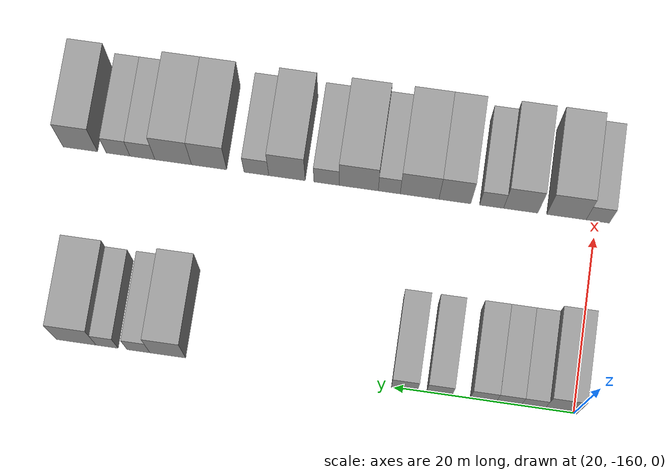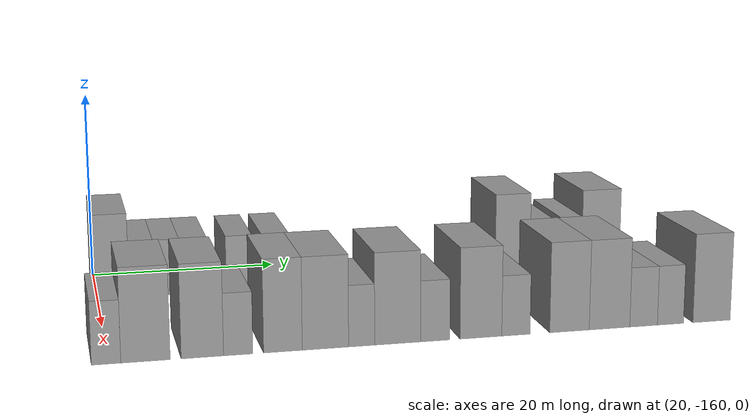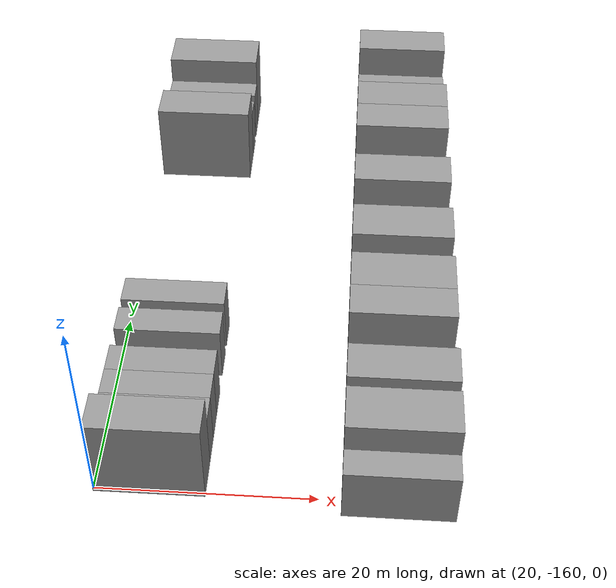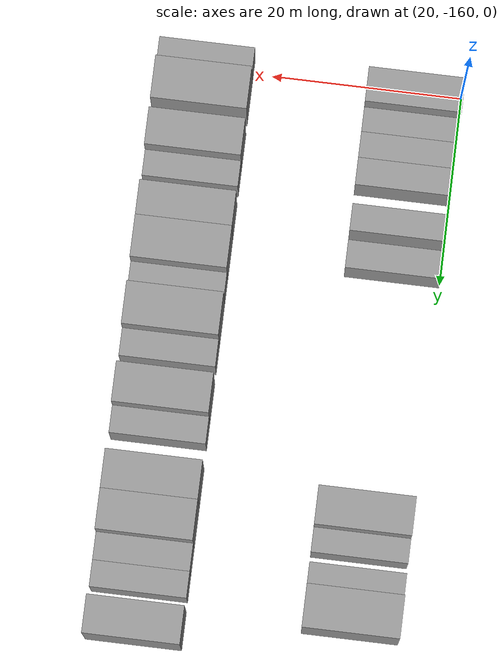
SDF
<sdf version="1.6">
 <world name="default">
  <model name="building_14">
   <static>1</static>
   <pose>25.0000 -158.5109 0 0.000000 0.000000 0.000000</pose>
   <link name="link">
    <pose>0 0 4.50 0 0 0</pose>
    <collision name="collision"><geometry><box><size>10.0000 3.6571 9.0000</size></box></geometry></collision>
    <visual name="visual">
     <cast_shadows>0</cast_shadows>
     <geometry><box><size>10.0000 3.6571 9.0000</size></box></geometry>
     <material>
      <script>
       <uri>model://grey_wall/materials/scripts</uri>
       <uri>model://grey_wall/materials/textures</uri>
       <name>vrc/grey_wall</name>
      </script>
     </material>
    </visual>
   </link>
  </model>
  <model name="building_15">
   <static>1</static>
   <pose>25.0000 -155.3823 0 0.000000 0.000000 0.000000</pose>
   <link name="link">
    <pose>0 0 3.00 0 0 0</pose>
    <collision name="collision"><geometry><box><size>10.0000 2.6001 6.0000</size></box></geometry></collision>
    <visual name="visual">
     <cast_shadows>0</cast_shadows>
     <geometry><box><size>10.0000 2.6001 6.0000</size></box></geometry>
     <material>
      <script>
       <uri>model://grey_wall/materials/scripts</uri>
       <uri>model://grey_wall/materials/textures</uri>
       <name>vrc/grey_wall</name>
      </script>
     </material>
    </visual>
   </link>
  </model>
  <model name="building_16">
   <static>1</static>
   <pose>25.0000 -152.7136 0 0.000000 0.000000 0.000000</pose>
   <link name="link">
    <pose>0 0 3.00 0 0 0</pose>
    <collision name="collision"><geometry><box><size>10.0000 2.7374 6.0000</size></box></geometry></collision>
    <visual name="visual">
     <cast_shadows>0</cast_shadows>
     <geometry><box><size>10.0000 2.7374 6.0000</size></box></geometry>
     <material>
      <script>
       <uri>model://grey_wall/materials/scripts</uri>
       <uri>model://grey_wall/materials/textures</uri>
       <name>vrc/grey_wall</name>
      </script>
     </material>
    </visual>
   </link>
  </model>
  <model name="building_17">
   <static>1</static>
   <pose>25.0000 -149.9025 0 0.000000 0.000000 0.000000</pose>
   <link name="link">
    <pose>0 0 3.00 0 0 0</pose>
    <collision name="collision"><geometry><box><size>10.0000 2.8847 6.0000</size></box></geometry></collision>
    <visual name="visual">
     <cast_shadows>0</cast_shadows>
     <geometry><box><size>10.0000 2.8847 6.0000</size></box></geometry>
     <material>
      <script>
       <uri>model://grey_wall/materials/scripts</uri>
       <uri>model://grey_wall/materials/textures</uri>
       <name>vrc/grey_wall</name>
      </script>
     </material>
    </visual>
   </link>
  </model>
  <model name="building_18">
   <static>1</static>
   <pose>25.0000 -145.0434 0 0.000000 0.000000 0.000000</pose>
   <link name="link">
    <pose>0 0 3.00 0 0 0</pose>
    <collision name="collision"><geometry><box><size>10.0000 2.8335 6.0000</size></box></geometry></collision>
    <visual name="visual">
     <cast_shadows>0</cast_shadows>
     <geometry><box><size>10.0000 2.8335 6.0000</size></box></geometry>
     <material>
      <script>
       <uri>model://grey_wall/materials/scripts</uri>
       <uri>model://grey_wall/materials/textures</uri>
       <name>vrc/grey_wall</name>
      </script>
     </material>
    </visual>
   </link>
  </model>
  <model name="building_19">
   <static>1</static>
   <pose>25.0000 -141.1644 0 0.000000 0.000000 0.000000</pose>
   <link name="link">
    <pose>0 0 3.00 0 0 0</pose>
    <collision name="collision"><geometry><box><size>10.0000 2.9245 6.0000</size></box></geometry></collision>
    <visual name="visual">
     <cast_shadows>0</cast_shadows>
     <geometry><box><size>10.0000 2.9245 6.0000</size></box></geometry>
     <material>
      <script>
       <uri>model://grey_wall/materials/scripts</uri>
       <uri>model://grey_wall/materials/textures</uri>
       <name>vrc/grey_wall</name>
      </script>
     </material>
    </visual>
   </link>
  </model>
  <model name="building_20">
   <static>1</static>
   <pose>25.0000 -114.6711 0 0.000000 0.000000 0.000000</pose>
   <link name="link">
    <pose>0 0 4.50 0 0 0</pose>
    <collision name="collision"><geometry><box><size>10.0000 4.0207 9.0000</size></box></geometry></collision>
    <visual name="visual">
     <cast_shadows>0</cast_shadows>
     <geometry><box><size>10.0000 4.0207 9.0000</size></box></geometry>
     <material>
      <script>
       <uri>model://grey_wall/materials/scripts</uri>
       <uri>model://grey_wall/materials/textures</uri>
       <name>vrc/grey_wall</name>
      </script>
     </material>
    </visual>
   </link>
  </model>
  <model name="building_21">
   <static>1</static>
   <pose>25.0000 -111.3727 0 0.000000 0.000000 0.000000</pose>
   <link name="link">
    <pose>0 0 3.00 0 0 0</pose>
    <collision name="collision"><geometry><box><size>10.0000 2.5760 6.0000</size></box></geometry></collision>
    <visual name="visual">
     <cast_shadows>0</cast_shadows>
     <geometry><box><size>10.0000 2.5760 6.0000</size></box></geometry>
     <material>
      <script>
       <uri>model://grey_wall/materials/scripts</uri>
       <uri>model://grey_wall/materials/textures</uri>
       <name>vrc/grey_wall</name>
      </script>
     </material>
    </visual>
   </link>
  </model>
  <model name="building_22">
   <static>1</static>
   <pose>25.0000 -107.8508 0 0.000000 0.000000 0.000000</pose>
   <link name="link">
    <pose>0 0 3.00 0 0 0</pose>
    <collision name="collision"><geometry><box><size>10.0000 2.4678 6.0000</size></box></geometry></collision>
    <visual name="visual">
     <cast_shadows>0</cast_shadows>
     <geometry><box><size>10.0000 2.4678 6.0000</size></box></geometry>
     <material>
      <script>
       <uri>model://grey_wall/materials/scripts</uri>
       <uri>model://grey_wall/materials/textures</uri>
       <name>vrc/grey_wall</name>
      </script>
     </material>
    </visual>
   </link>
  </model>
  <model name="building_23">
   <static>1</static>
   <pose>25.0000 -104.3762 0 0.000000 0.000000 0.000000</pose>
   <link name="link">
    <pose>0 0 4.50 0 0 0</pose>
    <collision name="collision"><geometry><box><size>10.0000 4.4815 9.0000</size></box></geometry></collision>
    <visual name="visual">
     <cast_shadows>0</cast_shadows>
     <geometry><box><size>10.0000 4.4815 9.0000</size></box></geometry>
     <material>
      <script>
       <uri>model://grey_wall/materials/scripts</uri>
       <uri>model://grey_wall/materials/textures</uri>
       <name>vrc/grey_wall</name>
      </script>
     </material>
    </visual>
   </link>
  </model>
  <model name="building_115">
   <static>1</static>
   <pose>47.0000 -160.2257 0 0.000000 0.000000 0.000000</pose>
   <link name="link">
    <pose>0 0 3.00 0 0 0</pose>
    <collision name="collision"><geometry><box><size>10.0000 2.6515 6.0000</size></box></geometry></collision>
    <visual name="visual">
     <cast_shadows>0</cast_shadows>
     <geometry><box><size>10.0000 2.6515 6.0000</size></box></geometry>
     <material>
      <script>
       <uri>model://grey_wall/materials/scripts</uri>
       <uri>model://grey_wall/materials/textures</uri>
       <name>vrc/grey_wall</name>
      </script>
     </material>
    </visual>
   </link>
  </model>
  <model name="building_116">
   <static>1</static>
   <pose>47.0000 -156.6583 0 0.000000 0.000000 0.000000</pose>
   <link name="link">
    <pose>0 0 4.50 0 0 0</pose>
    <collision name="collision"><geometry><box><size>10.0000 4.4832 9.0000</size></box></geometry></collision>
    <visual name="visual">
     <cast_shadows>0</cast_shadows>
     <geometry><box><size>10.0000 4.4832 9.0000</size></box></geometry>
     <material>
      <script>
       <uri>model://grey_wall/materials/scripts</uri>
       <uri>model://grey_wall/materials/textures</uri>
       <name>vrc/grey_wall</name>
      </script>
     </material>
    </visual>
   </link>
  </model>
  <model name="building_117">
   <static>1</static>
   <pose>47.0000 -151.4614 0 0.000000 0.000000 0.000000</pose>
   <link name="link">
    <pose>0 0 4.50 0 0 0</pose>
    <collision name="collision"><geometry><box><size>10.0000 3.9107 9.0000</size></box></geometry></collision>
    <visual name="visual">
     <cast_shadows>0</cast_shadows>
     <geometry><box><size>10.0000 3.9107 9.0000</size></box></geometry>
     <material>
      <script>
       <uri>model://grey_wall/materials/scripts</uri>
       <uri>model://grey_wall/materials/textures</uri>
       <name>vrc/grey_wall</name>
      </script>
     </material>
    </visual>
   </link>
  </model>
  <model name="building_118">
   <static>1</static>
   <pose>47.0000 -148.1375 0 0.000000 0.000000 0.000000</pose>
   <link name="link">
    <pose>0 0 3.00 0 0 0</pose>
    <collision name="collision"><geometry><box><size>10.0000 2.7369 6.0000</size></box></geometry></collision>
    <visual name="visual">
     <cast_shadows>0</cast_shadows>
     <geometry><box><size>10.0000 2.7369 6.0000</size></box></geometry>
     <material>
      <script>
       <uri>model://grey_wall/materials/scripts</uri>
       <uri>model://grey_wall/materials/textures</uri>
       <name>vrc/grey_wall</name>
      </script>
     </material>
    </visual>
   </link>
  </model>
  <model name="building_119">
   <static>1</static>
   <pose>47.0000 -143.9451 0 0.000000 0.000000 0.000000</pose>
   <link name="link">
    <pose>0 0 4.50 0 0 0</pose>
    <collision name="collision"><geometry><box><size>10.0000 3.6480 9.0000</size></box></geometry></collision>
    <visual name="visual">
     <cast_shadows>0</cast_shadows>
     <geometry><box><size>10.0000 3.6480 9.0000</size></box></geometry>
     <material>
      <script>
       <uri>model://grey_wall/materials/scripts</uri>
       <uri>model://grey_wall/materials/textures</uri>
       <name>vrc/grey_wall</name>
      </script>
     </material>
    </visual>
   </link>
  </model>
  <model name="building_120">
   <static>1</static>
   <pose>47.0000 -139.9086 0 0.000000 0.000000 0.000000</pose>
   <link name="link">
    <pose>0 0 4.50 0 0 0</pose>
    <collision name="collision"><geometry><box><size>10.0000 4.4248 9.0000</size></box></geometry></collision>
    <visual name="visual">
     <cast_shadows>0</cast_shadows>
     <geometry><box><size>10.0000 4.4248 9.0000</size></box></geometry>
     <material>
      <script>
       <uri>model://grey_wall/materials/scripts</uri>
       <uri>model://grey_wall/materials/textures</uri>
       <name>vrc/grey_wall</name>
      </script>
     </material>
    </visual>
   </link>
  </model>
  <model name="building_121">
   <static>1</static>
   <pose>47.0000 -136.4412 0 0.000000 0.000000 0.000000</pose>
   <link name="link">
    <pose>0 0 3.00 0 0 0</pose>
    <collision name="collision"><geometry><box><size>10.0000 2.5099 6.0000</size></box></geometry></collision>
    <visual name="visual">
     <cast_shadows>0</cast_shadows>
     <geometry><box><size>10.0000 2.5099 6.0000</size></box></geometry>
     <material>
      <script>
       <uri>model://grey_wall/materials/scripts</uri>
       <uri>model://grey_wall/materials/textures</uri>
       <name>vrc/grey_wall</name>
      </script>
     </material>
    </visual>
   </link>
  </model>
  <model name="building_122">
   <static>1</static>
   <pose>47.0000 -132.9473 0 0.000000 0.000000 0.000000</pose>
   <link name="link">
    <pose>0 0 4.50 0 0 0</pose>
    <collision name="collision"><geometry><box><size>10.0000 4.4780 9.0000</size></box></geometry></collision>
    <visual name="visual">
     <cast_shadows>0</cast_shadows>
     <geometry><box><size>10.0000 4.4780 9.0000</size></box></geometry>
     <material>
      <script>
       <uri>model://grey_wall/materials/scripts</uri>
       <uri>model://grey_wall/materials/textures</uri>
       <name>vrc/grey_wall</name>
      </script>
     </material>
    </visual>
   </link>
  </model>
  <model name="building_123">
   <static>1</static>
   <pose>47.0000 -129.2615 0 0.000000 0.000000 0.000000</pose>
   <link name="link">
    <pose>0 0 3.00 0 0 0</pose>
    <collision name="collision"><geometry><box><size>10.0000 2.8936 6.0000</size></box></geometry></collision>
    <visual name="visual">
     <cast_shadows>0</cast_shadows>
     <geometry><box><size>10.0000 2.8936 6.0000</size></box></geometry>
     <material>
      <script>
       <uri>model://grey_wall/materials/scripts</uri>
       <uri>model://grey_wall/materials/textures</uri>
       <name>vrc/grey_wall</name>
      </script>
     </material>
    </visual>
   </link>
  </model>
  <model name="building_124">
   <static>1</static>
   <pose>47.0000 -124.7250 0 0.000000 0.000000 0.000000</pose>
   <link name="link">
    <pose>0 0 4.50 0 0 0</pose>
    <collision name="collision"><geometry><box><size>10.0000 4.1793 9.0000</size></box></geometry></collision>
    <visual name="visual">
     <cast_shadows>0</cast_shadows>
     <geometry><box><size>10.0000 4.1793 9.0000</size></box></geometry>
     <material>
      <script>
       <uri>model://grey_wall/materials/scripts</uri>
       <uri>model://grey_wall/materials/textures</uri>
       <name>vrc/grey_wall</name>
      </script>
     </material>
    </visual>
   </link>
  </model>
  <model name="building_125">
   <static>1</static>
   <pose>47.0000 -121.2087 0 0.000000 0.000000 0.000000</pose>
   <link name="link">
    <pose>0 0 3.00 0 0 0</pose>
    <collision name="collision"><geometry><box><size>10.0000 2.8533 6.0000</size></box></geometry></collision>
    <visual name="visual">
     <cast_shadows>0</cast_shadows>
     <geometry><box><size>10.0000 2.8533 6.0000</size></box></geometry>
     <material>
      <script>
       <uri>model://grey_wall/materials/scripts</uri>
       <uri>model://grey_wall/materials/textures</uri>
       <name>vrc/grey_wall</name>
      </script>
     </material>
    </visual>
   </link>
  </model>
  <model name="building_126">
   <static>1</static>
   <pose>47.0000 -115.7549 0 0.000000 0.000000 0.000000</pose>
   <link name="link">
    <pose>0 0 4.50 0 0 0</pose>
    <collision name="collision"><geometry><box><size>10.0000 4.0543 9.0000</size></box></geometry></collision>
    <visual name="visual">
     <cast_shadows>0</cast_shadows>
     <geometry><box><size>10.0000 4.0543 9.0000</size></box></geometry>
     <material>
      <script>
       <uri>model://grey_wall/materials/scripts</uri>
       <uri>model://grey_wall/materials/textures</uri>
       <name>vrc/grey_wall</name>
      </script>
     </material>
    </visual>
   </link>
  </model>
  <model name="building_127">
   <static>1</static>
   <pose>47.0000 -111.6217 0 0.000000 0.000000 0.000000</pose>
   <link name="link">
    <pose>0 0 4.50 0 0 0</pose>
    <collision name="collision"><geometry><box><size>10.0000 4.2121 9.0000</size></box></geometry></collision>
    <visual name="visual">
     <cast_shadows>0</cast_shadows>
     <geometry><box><size>10.0000 4.2121 9.0000</size></box></geometry>
     <material>
      <script>
       <uri>model://grey_wall/materials/scripts</uri>
       <uri>model://grey_wall/materials/textures</uri>
       <name>vrc/grey_wall</name>
      </script>
     </material>
    </visual>
   </link>
  </model>
  <model name="building_128">
   <static>1</static>
   <pose>47.0000 -108.0708 0 0.000000 0.000000 0.000000</pose>
   <link name="link">
    <pose>0 0 3.00 0 0 0</pose>
    <collision name="collision"><geometry><box><size>10.0000 2.8897 6.0000</size></box></geometry></collision>
    <visual name="visual">
     <cast_shadows>0</cast_shadows>
     <geometry><box><size>10.0000 2.8897 6.0000</size></box></geometry>
     <material>
      <script>
       <uri>model://grey_wall/materials/scripts</uri>
       <uri>model://grey_wall/materials/textures</uri>
       <name>vrc/grey_wall</name>
      </script>
     </material>
    </visual>
   </link>
  </model>
  <model name="building_129">
   <static>1</static>
   <pose>47.0000 -105.2455 0 0.000000 0.000000 0.000000</pose>
   <link name="link">
    <pose>0 0 3.00 0 0 0</pose>
    <collision name="collision"><geometry><box><size>10.0000 2.7609 6.0000</size></box></geometry></collision>
    <visual name="visual">
     <cast_shadows>0</cast_shadows>
     <geometry><box><size>10.0000 2.7609 6.0000</size></box></geometry>
     <material>
      <script>
       <uri>model://grey_wall/materials/scripts</uri>
       <uri>model://grey_wall/materials/textures</uri>
       <name>vrc/grey_wall</name>
      </script>
     </material>
    </visual>
   </link>
  </model>
  <model name="building_130">
   <static>1</static>
   <pose>47.0000 -100.8756 0 0.000000 0.000000 0.000000</pose>
   <link name="link">
    <pose>0 0 4.50 0 0 0</pose>
    <collision name="collision"><geometry><box><size>10.0000 3.9789 9.0000</size></box></geometry></collision>
    <visual name="visual">
     <cast_shadows>0</cast_shadows>
     <geometry><box><size>10.0000 3.9789 9.0000</size></box></geometry>
     <material>
      <script>
       <uri>model://grey_wall/materials/scripts</uri>
       <uri>model://grey_wall/materials/textures</uri>
       <name>vrc/grey_wall</name>
      </script>
     </material>
    </visual>
   </link>
  </model>
 </world>
</sdf>
